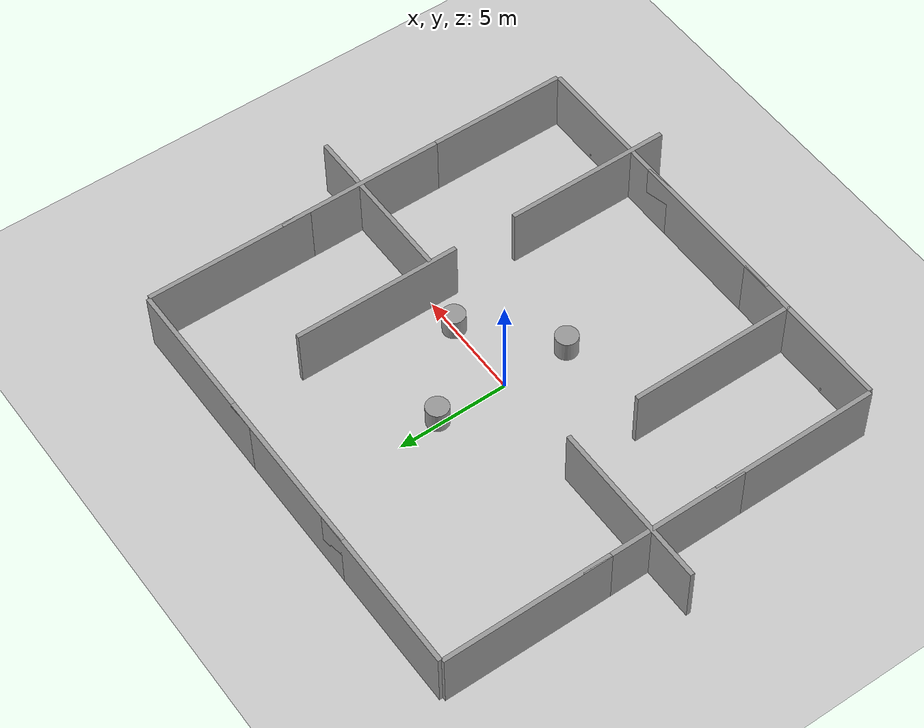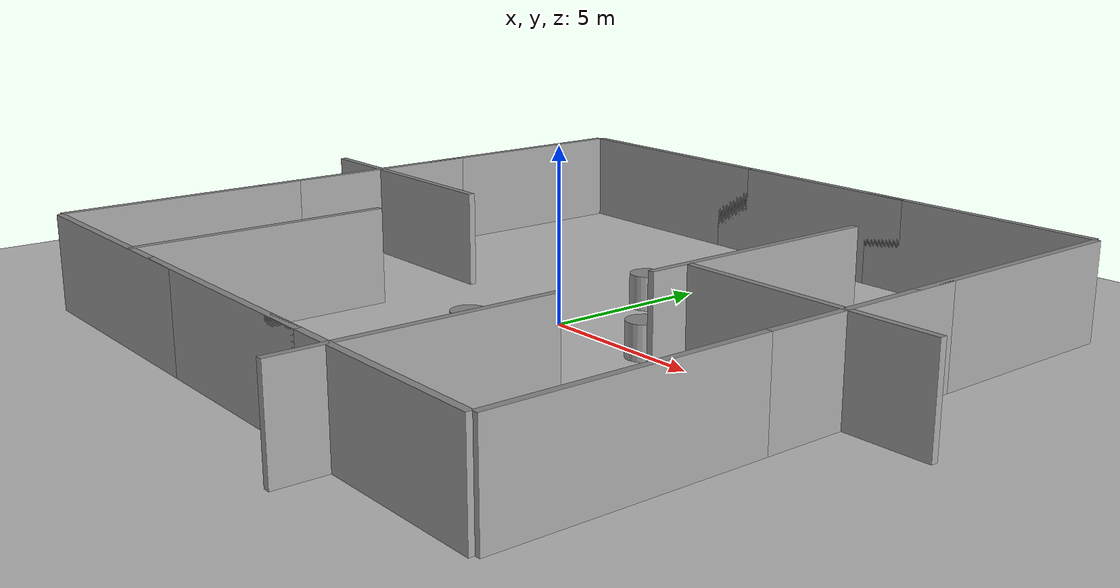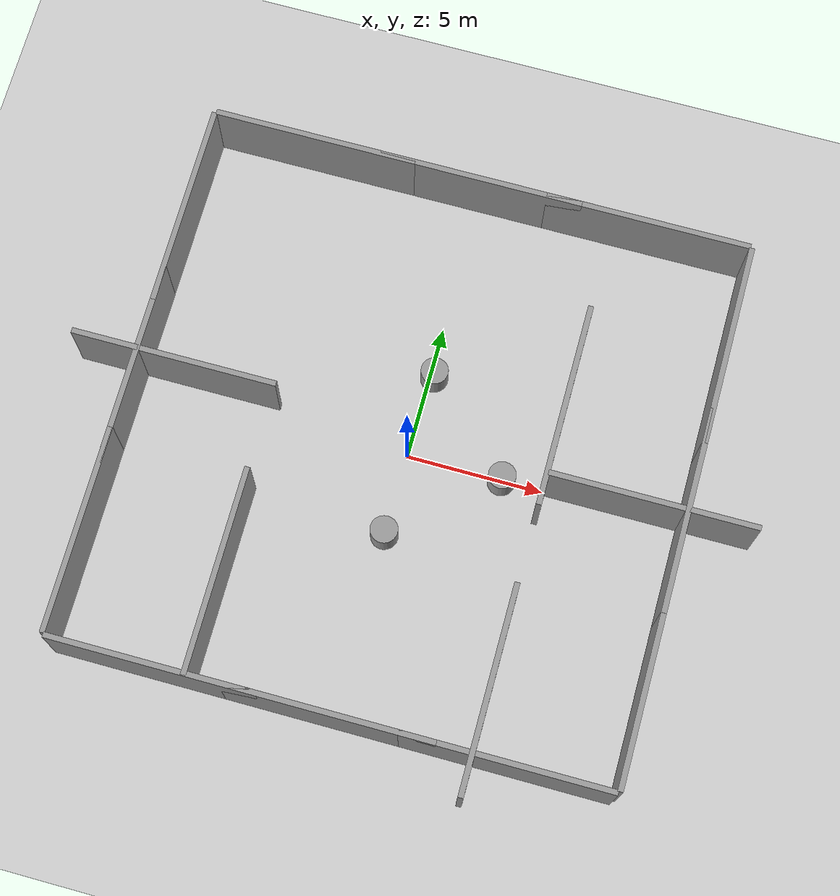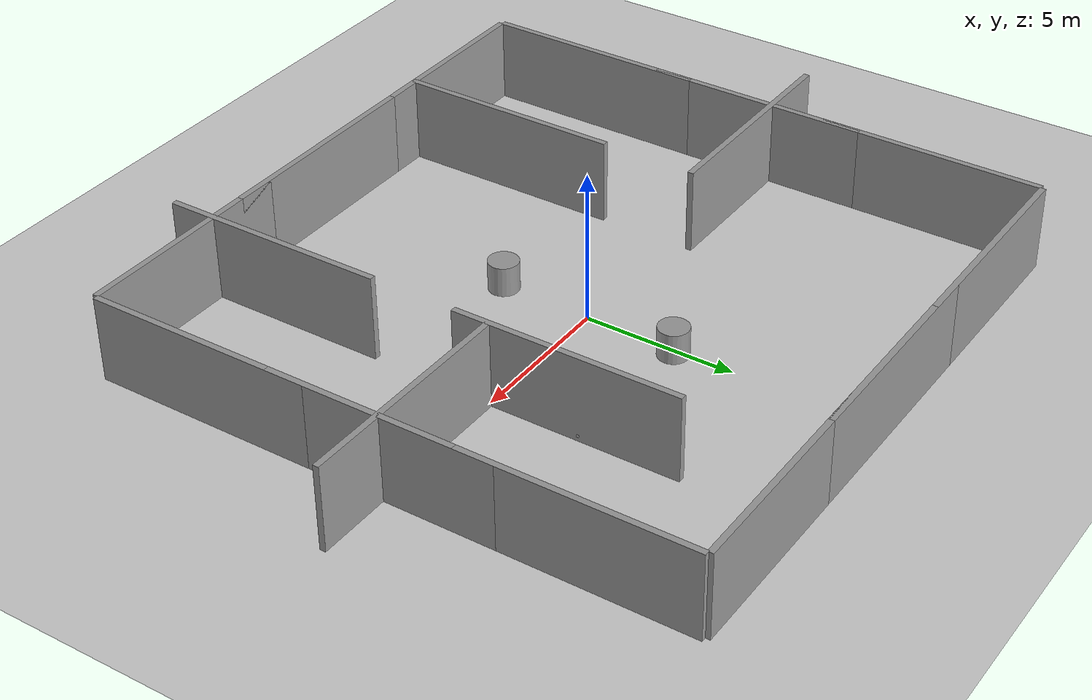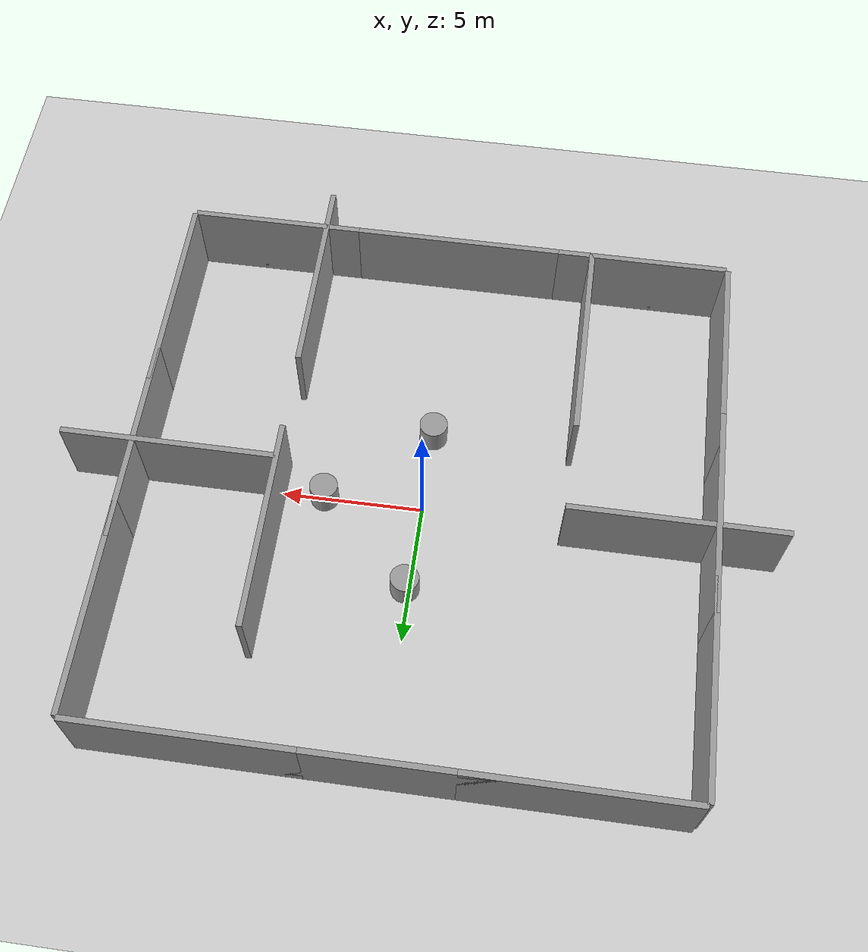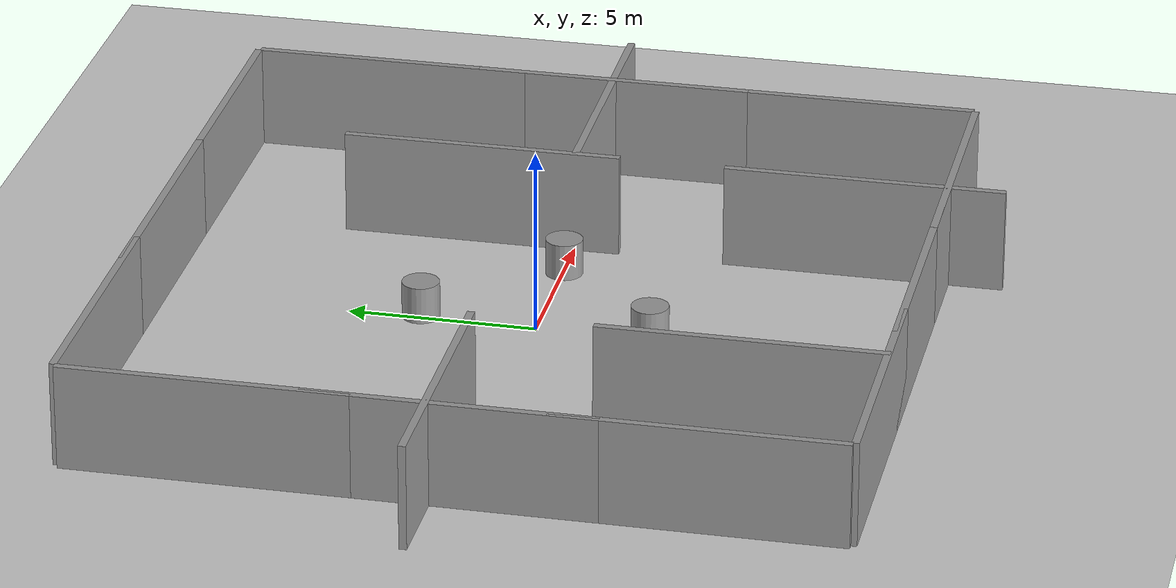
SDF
<sdf version="1.7">
 <world name="default">
  <light name="sun" type="directional">
   <pose>0 0 10 0 -0 0</pose>
   <diffuse>0.8 0.8 0.8 1</diffuse>
   <specular>0.2 0.2 0.2 1</specular>
   <attenuation>
    <range>1000</range>
    <constant>0.9</constant>
    <linear>0.01</linear>
    <quadratic>0.001</quadratic>
   </attenuation>
   <direction>-0.5 0.1 -0.9</direction>
   <spot><inner_angle>0</inner_angle><outer_angle>0</outer_angle><falloff>0</falloff></spot>
  </light>
  <model name="ground_plane">
   <static>1</static>
   <link name="link">
    <collision name="collision">
     <geometry><plane><normal>0 0 1</normal><size>100 100</size></plane></geometry>
     <surface>
      <contact><collide_bitmask>65535</collide_bitmask></contact>
      <friction><ode><mu>100</mu><mu2>50</mu2></ode></friction>
     </surface>
    </collision>
    <visual name="visual">
     <cast_shadows>0</cast_shadows>
     <geometry><plane><normal>0 0 1</normal><size>100 100</size></plane></geometry>
     <material>
      <script><uri>file://media/materials/scripts/gazebo.material</uri><name>Gazebo/Grey</name></script>
     </material>
    </visual>
   </link>
  </model>
  <gravity>0 0 -9.8</gravity>
  <magnetic_field>6e-06 2.3e-05 -4.2e-05</magnetic_field>
  <atmosphere type="adiabatic"/>
  <physics type="ode">
   <max_step_size>0.001</max_step_size>
   <real_time_factor>1</real_time_factor>
   <real_time_update_rate>1000</real_time_update_rate>
  </physics>
  <scene><ambient>0.4 0.4 0.4 1</ambient><background>0.7 0.7 0.7 1</background><shadows>1</shadows></scene>
  <spherical_coordinates>
   <surface_model>EARTH_WGS84</surface_model>
   <latitude_deg>0</latitude_deg>
   <longitude_deg>0</longitude_deg>
   <elevation>0</elevation>
   <heading_deg>0</heading_deg>
  </spherical_coordinates>
  <model name="grey_wall">
   <static>1</static>
   <link name="link">
    <pose>0 0 1.4 0 -0 0</pose>
    <collision name="collision"><geometry><box><size>7.5 0.2 2.8</size></box></geometry></collision>
    <visual name="visual">
     <cast_shadows>0</cast_shadows>
     <geometry><box><size>7.5 0.2 2.8</size></box></geometry>
     <material>
      <script>
       <uri>model://grey_wall/materials/scripts</uri>
       <uri>model://grey_wall/materials/textures</uri>
       <name>vrc/grey_wall</name>
      </script>
     </material>
    </visual>
   </link>
   <pose>0 -10 0 0 -0 0</pose>
  </model>
  <model name="grey_wall_clone">
   <static>1</static>
   <link name="link">
    <pose>0 0 1.4 0 -0 0</pose>
    <collision name="collision"><geometry><box><size>7.5 0.2 2.8</size></box></geometry></collision>
    <visual name="visual">
     <cast_shadows>0</cast_shadows>
     <geometry><box><size>7.5 0.2 2.8</size></box></geometry>
     <material>
      <script>
       <uri>model://grey_wall/materials/scripts</uri>
       <uri>model://grey_wall/materials/textures</uri>
       <name>vrc/grey_wall</name>
      </script>
     </material>
    </visual>
   </link>
   <pose>6.2 -10 0 0 -0 0</pose>
  </model>
  <model name="grey_wall_clone_0">
   <static>1</static>
   <link name="link">
    <pose>0 0 1.4 0 -0 0</pose>
    <collision name="collision"><geometry><box><size>7.5 0.2 2.8</size></box></geometry></collision>
    <visual name="visual">
     <cast_shadows>0</cast_shadows>
     <geometry><box><size>7.5 0.2 2.8</size></box></geometry>
     <material>
      <script>
       <uri>model://grey_wall/materials/scripts</uri>
       <uri>model://grey_wall/materials/textures</uri>
       <name>vrc/grey_wall</name>
      </script>
     </material>
    </visual>
   </link>
   <pose>-6.2 -10 0 0 -0 0</pose>
  </model>
  <model name="grey_wall_clone_0_clone">
   <static>1</static>
   <link name="link">
    <pose>0 0 1.4 0 -0 0</pose>
    <collision name="collision"><geometry><box><size>7.5 0.2 2.8</size></box></geometry></collision>
    <visual name="visual">
     <cast_shadows>0</cast_shadows>
     <geometry><box><size>7.5 0.2 2.8</size></box></geometry>
     <material>
      <script>
       <uri>model://grey_wall/materials/scripts</uri>
       <uri>model://grey_wall/materials/textures</uri>
       <name>vrc/grey_wall</name>
      </script>
     </material>
    </visual>
   </link>
   <pose>6.2 10 0 0 -0 0</pose>
  </model>
  <model name="grey_wall_clone_0_clone_0">
   <static>1</static>
   <link name="link">
    <pose>0 0 1.4 0 -0 0</pose>
    <collision name="collision"><geometry><box><size>7.5 0.2 2.8</size></box></geometry></collision>
    <visual name="visual">
     <cast_shadows>0</cast_shadows>
     <geometry><box><size>7.5 0.2 2.8</size></box></geometry>
     <material>
      <script>
       <uri>model://grey_wall/materials/scripts</uri>
       <uri>model://grey_wall/materials/textures</uri>
       <name>vrc/grey_wall</name>
      </script>
     </material>
    </visual>
   </link>
   <pose>0 10 0 0 -0 0</pose>
  </model>
  <model name="grey_wall_clone_0_clone_0_clone">
   <static>1</static>
   <link name="link">
    <pose>0 0 1.4 0 -0 0</pose>
    <collision name="collision"><geometry><box><size>7.5 0.2 2.8</size></box></geometry></collision>
    <visual name="visual">
     <cast_shadows>0</cast_shadows>
     <geometry><box><size>7.5 0.2 2.8</size></box></geometry>
     <material>
      <script>
       <uri>model://grey_wall/materials/scripts</uri>
       <uri>model://grey_wall/materials/textures</uri>
       <name>vrc/grey_wall</name>
      </script>
     </material>
    </visual>
   </link>
   <pose>-6.2 10 0 0 -0 0</pose>
  </model>
  <model name="grey_wall_clone_0_clone_clone">
   <static>1</static>
   <link name="link">
    <pose>0 0 1.4 0 -0 0</pose>
    <collision name="collision"><geometry><box><size>7.5 0.2 2.8</size></box></geometry></collision>
    <visual name="visual">
     <cast_shadows>0</cast_shadows>
     <geometry><box><size>7.5 0.2 2.8</size></box></geometry>
     <material>
      <script>
       <uri>model://grey_wall/materials/scripts</uri>
       <uri>model://grey_wall/materials/textures</uri>
       <name>vrc/grey_wall</name>
      </script>
     </material>
    </visual>
   </link>
   <pose>10 6.2 0 0 -0 1.57079</pose>
  </model>
  <model name="grey_wall_clone_0_clone_clone_clone">
   <static>1</static>
   <link name="link">
    <pose>0 0 1.4 0 -0 0</pose>
    <collision name="collision"><geometry><box><size>7.5 0.2 2.8</size></box></geometry></collision>
    <visual name="visual">
     <cast_shadows>0</cast_shadows>
     <geometry><box><size>7.5 0.2 2.8</size></box></geometry>
     <material>
      <script>
       <uri>model://grey_wall/materials/scripts</uri>
       <uri>model://grey_wall/materials/textures</uri>
       <name>vrc/grey_wall</name>
      </script>
     </material>
    </visual>
   </link>
   <pose>10 0 0 0 -0 1.57079</pose>
  </model>
  <model name="grey_wall_clone_0_clone_clone_clone_clone">
   <static>1</static>
   <link name="link">
    <pose>0 0 1.4 0 -0 0</pose>
    <collision name="collision"><geometry><box><size>7.5 0.2 2.8</size></box></geometry></collision>
    <visual name="visual">
     <cast_shadows>0</cast_shadows>
     <geometry><box><size>7.5 0.2 2.8</size></box></geometry>
     <material>
      <script>
       <uri>model://grey_wall/materials/scripts</uri>
       <uri>model://grey_wall/materials/textures</uri>
       <name>vrc/grey_wall</name>
      </script>
     </material>
    </visual>
   </link>
   <pose>10 -6.2 0 0 -0 1.57079</pose>
  </model>
  <model name="grey_wall_clone_0_clone_clone_clone_clone_clone">
   <static>1</static>
   <link name="link">
    <pose>0 0 1.4 0 -0 0</pose>
    <collision name="collision"><geometry><box><size>7.5 0.2 2.8</size></box></geometry></collision>
    <visual name="visual">
     <cast_shadows>0</cast_shadows>
     <geometry><box><size>7.5 0.2 2.8</size></box></geometry>
     <material>
      <script>
       <uri>model://grey_wall/materials/scripts</uri>
       <uri>model://grey_wall/materials/textures</uri>
       <name>vrc/grey_wall</name>
      </script>
     </material>
    </visual>
   </link>
   <pose>-10 -6.2 0 0 -0 1.57079</pose>
  </model>
  <model name="grey_wall_clone_0_clone_clone_clone_clone_clone_clone">
   <static>1</static>
   <link name="link">
    <pose>0 0 1.4 0 -0 0</pose>
    <collision name="collision"><geometry><box><size>7.5 0.2 2.8</size></box></geometry></collision>
    <visual name="visual">
     <cast_shadows>0</cast_shadows>
     <geometry><box><size>7.5 0.2 2.8</size></box></geometry>
     <material>
      <script>
       <uri>model://grey_wall/materials/scripts</uri>
       <uri>model://grey_wall/materials/textures</uri>
       <name>vrc/grey_wall</name>
      </script>
     </material>
    </visual>
   </link>
   <pose>-10 0 0 0 -0 1.57079</pose>
  </model>
  <model name="grey_wall_clone_0_clone_clone_clone_clone_clone_clone_clone">
   <static>1</static>
   <link name="link">
    <pose>0 0 1.4 0 -0 0</pose>
    <collision name="collision"><geometry><box><size>7.5 0.2 2.8</size></box></geometry></collision>
    <visual name="visual">
     <cast_shadows>0</cast_shadows>
     <geometry><box><size>7.5 0.2 2.8</size></box></geometry>
     <material>
      <script>
       <uri>model://grey_wall/materials/scripts</uri>
       <uri>model://grey_wall/materials/textures</uri>
       <name>vrc/grey_wall</name>
      </script>
     </material>
    </visual>
   </link>
   <pose>-10 6.2 0 0 -0 1.57079</pose>
  </model>
  <model name="grey_wall_clone_0_clone_clone_clone_clone_clone_clone_1">
   <static>1</static>
   <link name="link">
    <pose>0 0 1.4 0 -0 0</pose>
    <collision name="collision"><geometry><box><size>7.5 0.2 2.8</size></box></geometry></collision>
    <visual name="visual">
     <cast_shadows>0</cast_shadows>
     <geometry><box><size>7.5 0.2 2.8</size></box></geometry>
     <material>
      <script>
       <uri>model://grey_wall/materials/scripts</uri>
       <uri>model://grey_wall/materials/textures</uri>
       <name>vrc/grey_wall</name>
      </script>
     </material>
    </visual>
   </link>
   <pose>-5.00256 -6.31662 0 0 -0 1.57079</pose>
  </model>
  <model name="grey_wall_clone_0_clone_1">
   <static>1</static>
   <link name="link">
    <pose>0 0 1.4 0 -0 0</pose>
    <collision name="collision"><geometry><box><size>7.5 0.2 2.8</size></box></geometry></collision>
    <visual name="visual">
     <cast_shadows>0</cast_shadows>
     <geometry><box><size>7.5 0.2 2.8</size></box></geometry>
     <material>
      <script>
       <uri>model://grey_wall/materials/scripts</uri>
       <uri>model://grey_wall/materials/textures</uri>
       <name>vrc/grey_wall</name>
      </script>
     </material>
    </visual>
   </link>
   <pose>-8.65226 0.584538 0 0 -0 0</pose>
  </model>
  <model name="grey_wall_clone_0_clone_clone_clone_clone_clone_clone_1_clone">
   <static>1</static>
   <link name="link">
    <pose>0 0 1.4 0 -0 0</pose>
    <collision name="collision"><geometry><box><size>7.5 0.2 2.8</size></box></geometry></collision>
    <visual name="visual">
     <cast_shadows>0</cast_shadows>
     <geometry><box><size>7.5 0.2 2.8</size></box></geometry>
     <material>
      <script>
       <uri>model://grey_wall/materials/scripts</uri>
       <uri>model://grey_wall/materials/textures</uri>
       <name>vrc/grey_wall</name>
      </script>
     </material>
    </visual>
   </link>
   <pose>4.98337 -7.78398 0 0 -0 1.57079</pose>
  </model>
  <model name="grey_wall_clone_1">
   <static>1</static>
   <link name="link">
    <pose>0 0 1.4 0 -0 0</pose>
    <collision name="collision"><geometry><box><size>7.5 0.2 2.8</size></box></geometry></collision>
    <visual name="visual">
     <cast_shadows>0</cast_shadows>
     <geometry><box><size>7.5 0.2 2.8</size></box></geometry>
     <material>
      <script>
       <uri>model://grey_wall/materials/scripts</uri>
       <uri>model://grey_wall/materials/textures</uri>
       <name>vrc/grey_wall</name>
      </script>
     </material>
    </visual>
   </link>
   <pose>8.79234 0 0 0 -0 0</pose>
  </model>
  <model name="grey_wall_clone_0_clone_clone_clone_clone_clone_clone_1_clone_clone">
   <static>1</static>
   <link name="link">
    <pose>0 0 1.4 0 -0 0</pose>
    <collision name="collision"><geometry><box><size>7.5 0.2 2.8</size></box></geometry></collision>
    <visual name="visual">
     <cast_shadows>0</cast_shadows>
     <geometry><box><size>7.5 0.2 2.8</size></box></geometry>
     <material>
      <script>
       <uri>model://grey_wall/materials/scripts</uri>
       <uri>model://grey_wall/materials/textures</uri>
       <name>vrc/grey_wall</name>
      </script>
     </material>
    </visual>
   </link>
   <pose>5 2.545 0 0 -0 1.57079</pose>
  </model>
  <model name="qrcode_B">
   <static>1</static>
   <link name="marker">
    <gravity>0</gravity>
    <visual name="visual">
     <geometry><box><size>0.09 0.09 0.002</size></box></geometry>
     <material>
      <script>
       <uri>model://qrcode_B/material/scripts</uri>
       <uri>model://qrcode_B/material/textures</uri>
       <name>Aruco/qrcode_B</name>
      </script>
     </material>
    </visual>
    <collision name="collision"><geometry><box><size>0.2 0.2 0.002</size></box></geometry></collision>
   </link>
   <pose>7.5 -9.9 0.2 1.5707 1.5707 -0</pose>
  </model>
  <model name="qrcode_A">
   <static>1</static>
   <link name="marker">
    <gravity>0</gravity>
    <visual name="visual">
     <geometry><box><size>0.09 0.09 0.002</size></box></geometry>
     <material>
      <script>
       <uri>model://qrcode_A/material/scripts</uri>
       <uri>model://qrcode_A/material/textures</uri>
       <name>Aruco/qrcode_A</name>
      </script>
     </material>
    </visual>
    <collision name="collision"><geometry><box><size>0.09 0.09 0.02</size></box></geometry></collision>
   </link>
   <pose>-7.5 -9.9 0.2 1.5707 1.5707 -0</pose>
  </model>
  <model name="qrcode_C">
   <static>1</static>
   <link name="marker">
    <gravity>0</gravity>
    <visual name="visual">
     <geometry><box><size>0.09 0.09 0.002</size></box></geometry>
     <material>
      <script>
       <uri>model://qrcode_C/material/scripts</uri>
       <uri>model://qrcode_C/material/textures</uri>
       <name>Aruco/qrcode_C</name>
      </script>
     </material>
    </visual>
    <collision name="collision"><geometry><box><size>0.09 0.09 0.02</size></box></geometry></collision>
   </link>
   <pose>5.1 3 0.17 0 -1.5707 0</pose>
  </model>
  <model name="unit_cylinder">
   <pose>3.48937 -0.019632 0.499997 3e-06 4e-06 -0</pose>
   <link name="link">
    <inertial>
     <mass>1</mass>
     <inertia><ixx>0.145833</ixx><ixy>0</ixy><ixz>0</ixz><iyy>0.145833</iyy><iyz>0</iyz><izz>0.125</izz></inertia>
    </inertial>
    <collision name="collision">
     <geometry><cylinder><radius>0.5</radius><length>1</length></cylinder></geometry>
    </collision>
    <visual name="visual">
     <geometry><cylinder><radius>0.5</radius><length>1</length></cylinder></geometry>
     <material>
      <script><name>Gazebo/Grey</name><uri>file://media/materials/scripts/gazebo.material</uri></script>
     </material>
    </visual>
   </link>
  </model>
  <model name="unit_cylinder_0">
   <pose>-0.012494 -3.03042 0.499993 -3e-06 -4e-06 -0</pose>
   <link name="link">
    <inertial>
     <mass>1</mass>
     <inertia><ixx>0.145833</ixx><ixy>0</ixy><ixz>0</ixz><iyy>0.145833</iyy><iyz>0</iyz><izz>0.125</izz></inertia>
    </inertial>
    <collision name="collision">
     <geometry><cylinder><radius>0.5</radius><length>1</length></cylinder></geometry>
    </collision>
    <visual name="visual">
     <geometry><cylinder><radius>0.5</radius><length>1</length></cylinder></geometry>
     <material>
      <script><name>Gazebo/Grey</name><uri>file://media/materials/scripts/gazebo.material</uri></script>
     </material>
    </visual>
   </link>
  </model>
  <model name="unit_cylinder_1">
   <pose>0.166623 3.10243 0.499997 3e-06 4e-06 -0</pose>
   <link name="link">
    <inertial>
     <mass>1</mass>
     <inertia><ixx>0.145833</ixx><ixy>0</ixy><ixz>0</ixz><iyy>0.145833</iyy><iyz>0</iyz><izz>0.125</izz></inertia>
    </inertial>
    <collision name="collision">
     <geometry><cylinder><radius>0.5</radius><length>1</length></cylinder></geometry>
    </collision>
    <visual name="visual">
     <geometry><cylinder><radius>0.5</radius><length>1</length></cylinder></geometry>
     <material>
      <script><name>Gazebo/Grey</name><uri>file://media/materials/scripts/gazebo.material</uri></script>
     </material>
    </visual>
   </link>
  </model>
 </world>
</sdf>
